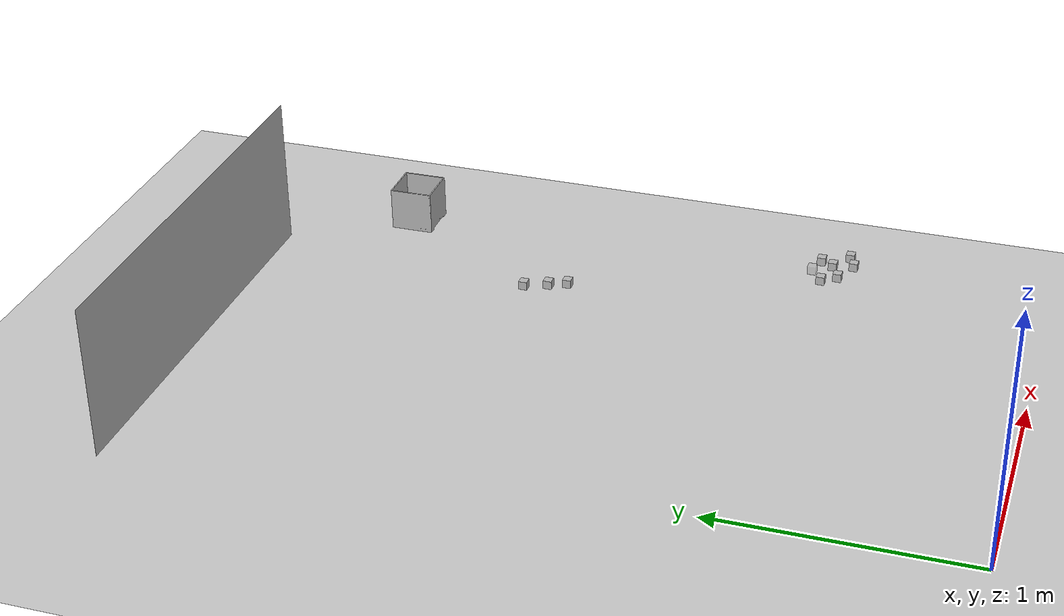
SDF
<sdf version="1.7">
 <world name="default">
  <model name="ground_plane">
   <static>1</static>
   <link name="link">
    <collision name="collision">
     <geometry><plane><normal>0 0 1</normal><size>100 100</size></plane></geometry>
     <surface><friction><ode><mu>100</mu><mu2>50</mu2></ode></friction></surface>
    </collision>
    <visual name="visual">
     <cast_shadows>0</cast_shadows>
     <geometry><plane><normal>0 0 1</normal><size>100 100</size></plane></geometry>
     <material>
      <script><uri>file://media/materials/scripts/gazebo.material</uri><name>Gazebo/Grey</name></script>
     </material>
    </visual>
   </link>
  </model>
  <model name="menagers_commerciale_gobelet_glace">
   <static>0</static>
   <link name="link">
    <inertial>
     <mass>0.00893</mass>
     <inertia>
      <ixx>4.47e-06</ixx>
      <iyy>4.47e-06</iyy>
      <izz>4.47e-06</izz>
      <ixy>0</ixy>
      <ixz>0</ixz>
      <iyz>0</iyz>
     </inertia>
    </inertial>
    <visual name="cube_visual">
     <geometry><box><size>0.03 0.03 0.03</size></box></geometry>
     <material>
      <script>
       <uri>model://menagers_commerciale_gobelet_glace/materials/scripts/</uri>
       <uri>model://menagers_commerciale_gobelet_glace/materials/textures/</uri>
       <name>menagers_commerciale_gobelet_glace/FaceMaterial</name>
      </script>
     </material>
    </visual>
    <collision name="collision"><geometry><box><size>0.03 0.03 0.03</size></box></geometry></collision>
   </link>
   <pose>0.310081 1.71409 0.624997 7.7e-05 0.000113 -0.005496</pose>
  </model>
  <model name="dangereux_residentielle_dechets_electronique">
   <static>0</static>
   <link name="link">
    <inertial>
     <mass>0.00893</mass>
     <inertia>
      <ixx>4.47e-06</ixx>
      <iyy>4.47e-06</iyy>
      <izz>4.47e-06</izz>
      <ixy>0</ixy>
      <ixz>0</ixz>
      <iyz>0</iyz>
     </inertia>
    </inertial>
    <visual name="cube_visual">
     <geometry><box><size>0.03 0.03 0.03</size></box></geometry>
     <material>
      <script>
       <uri>model://dangereux_residentielle_dechets_electronique/materials/scripts/</uri>
       <uri>model://dangereux_residentielle_dechets_electronique/materials/textures/</uri>
       <name>dangereux_residentielle_dechets_electronique/FaceMaterial</name>
      </script>
     </material>
    </visual>
    <collision name="collision"><geometry><box><size>0.03 0.03 0.03</size></box></geometry></collision>
   </link>
   <pose>0.339329 1.63457 0.625 0 0 -0.00903</pose>
  </model>
  <model name="dangereux_residentielle_insecticide_aerosol">
   <static>0</static>
   <link name="link">
    <inertial>
     <mass>0.00893</mass>
     <inertia>
      <ixx>4.47e-06</ixx>
      <iyy>4.47e-06</iyy>
      <izz>4.47e-06</izz>
      <ixy>0</ixy>
      <ixz>0</ixz>
      <iyz>0</iyz>
     </inertia>
    </inertial>
    <visual name="cube_visual">
     <geometry><box><size>0.03 0.03 0.03</size></box></geometry>
     <material>
      <script>
       <uri>model://dangereux_residentielle_insecticide_aerosol/materials/scripts/</uri>
       <uri>model://dangereux_residentielle_insecticide_aerosol/materials/textures/</uri>
       <name>dangereux_residentielle_insecticide_aerosol/FaceMaterial</name>
      </script>
     </material>
    </visual>
    <collision name="collision"><geometry><box><size>0.03 0.03 0.03</size></box></geometry></collision>
   </link>
   <pose>0.365225 1.5726 0.624997 3.5e-05 -0 -0.0068</pose>
  </model>
  <model name="dangereux_commerciale_condensateur_pcb">
   <static>0</static>
   <link name="link">
    <inertial>
     <mass>0.00893</mass>
     <inertia>
      <ixx>4.47e-06</ixx>
      <iyy>4.47e-06</iyy>
      <izz>4.47e-06</izz>
      <ixy>0</ixy>
      <ixz>0</ixz>
      <iyz>0</iyz>
     </inertia>
    </inertial>
    <visual name="cube_visual">
     <geometry><box><size>0.03 0.03 0.03</size></box></geometry>
     <material>
      <script>
       <uri>model://dangereux_commerciale_condensateur_pcb/materials/scripts/</uri>
       <uri>model://dangereux_commerciale_condensateur_pcb/materials/textures/</uri>
       <name>dangereux_commerciale_condensateur_pcb/FaceMaterial</name>
      </script>
     </material>
    </visual>
    <collision name="collision"><geometry><box><size>0.03 0.03 0.03</size></box></geometry></collision>
   </link>
   <pose>0.777484 0.760806 0.624991 2e-06 6.7e-05 -0.001045</pose>
  </model>
  <model name="dangereux_commerciale_disque_dur_defaillant">
   <static>0</static>
   <link name="link">
    <inertial>
     <mass>0.00893</mass>
     <inertia>
      <ixx>4.47e-06</ixx>
      <iyy>4.47e-06</iyy>
      <izz>4.47e-06</izz>
      <ixy>0</ixy>
      <ixz>0</ixz>
      <iyz>0</iyz>
     </inertia>
    </inertial>
    <visual name="cube_visual">
     <geometry><box><size>0.03 0.03 0.03</size></box></geometry>
     <material>
      <script>
       <uri>model://dangereux_commerciale_disque_dur_defaillant/materials/scripts/</uri>
       <uri>model://dangereux_commerciale_disque_dur_defaillant/materials/textures/</uri>
       <name>dangereux_commerciale_disque_dur_defaillant/FaceMaterial</name>
      </script>
     </material>
    </visual>
    <collision name="collision"><geometry><box><size>0.03 0.03 0.03</size></box></geometry></collision>
   </link>
   <pose>0.680274 0.68645 0.624991 2e-06 6.7e-05 -0.001045</pose>
  </model>
  <model name="dangereux_commerciale_ecran_lcd_casse">
   <static>0</static>
   <link name="link">
    <inertial>
     <mass>0.00893</mass>
     <inertia>
      <ixx>4.47e-06</ixx>
      <iyy>4.47e-06</iyy>
      <izz>4.47e-06</izz>
      <ixy>0</ixy>
      <ixz>0</ixz>
      <iyz>0</iyz>
     </inertia>
    </inertial>
    <visual name="cube_visual">
     <geometry><box><size>0.03 0.03 0.03</size></box></geometry>
     <material>
      <script>
       <uri>model://dangereux_commerciale_ecran_lcd_casse/materials/scripts/</uri>
       <uri>model://dangereux_commerciale_ecran_lcd_casse/materials/textures/</uri>
       <name>dangereux_commerciale_ecran_lcd_casse/FaceMaterial</name>
      </script>
     </material>
    </visual>
    <collision name="collision"><geometry><box><size>0.03 0.03 0.03</size></box></geometry></collision>
   </link>
   <pose>0.752677 0.716546 0.624993 -9.2e-05 -9e-05 -0.003399</pose>
  </model>
  <model name="dangereux_industrielle_dechet_radioactif_faible">
   <static>0</static>
   <link name="link">
    <inertial>
     <mass>0.00893</mass>
     <inertia>
      <ixx>4.47e-06</ixx>
      <iyy>4.47e-06</iyy>
      <izz>4.47e-06</izz>
      <ixy>0</ixy>
      <ixz>0</ixz>
      <iyz>0</iyz>
     </inertia>
    </inertial>
    <visual name="cube_visual">
     <geometry><box><size>0.03 0.03 0.03</size></box></geometry>
     <material>
      <script>
       <uri>model://dangereux_industrielle_dechet_radioactif_faible/materials/scripts/</uri>
       <uri>model://dangereux_industrielle_dechet_radioactif_faible/materials/textures/</uri>
       <name>dangereux_industrielle_dechet_radioactif_faible/FaceMaterial</name>
      </script>
     </material>
    </visual>
    <collision name="collision"><geometry><box><size>0.03 0.03 0.03</size></box></geometry></collision>
   </link>
   <pose>0.828776 0.667472 0.625 0 0 -0.010994</pose>
  </model>
  <model name="dangereux_industrielle_formaldehyde_industriel">
   <static>0</static>
   <link name="link">
    <inertial>
     <mass>0.00893</mass>
     <inertia>
      <ixx>4.47e-06</ixx>
      <iyy>4.47e-06</iyy>
      <izz>4.47e-06</izz>
      <ixy>0</ixy>
      <ixz>0</ixz>
      <iyz>0</iyz>
     </inertia>
    </inertial>
    <visual name="cube_visual">
     <geometry><box><size>0.03 0.03 0.03</size></box></geometry>
     <material>
      <script>
       <uri>model://dangereux_industrielle_formaldehyde_industriel/materials/scripts/</uri>
       <uri>model://dangereux_industrielle_formaldehyde_industriel/materials/textures/</uri>
       <name>dangereux_industrielle_formaldehyde_industriel/FaceMaterial</name>
      </script>
     </material>
    </visual>
    <collision name="collision"><geometry><box><size>0.03 0.03 0.03</size></box></geometry></collision>
   </link>
   <pose>0.770077 0.645647 0.625 0 -0 -0.010994</pose>
  </model>
  <model name="recyclables_commerciale_plastique_transparent">
   <static>0</static>
   <link name="link">
    <inertial>
     <mass>0.00893</mass>
     <inertia>
      <ixx>4.47e-06</ixx>
      <iyy>4.47e-06</iyy>
      <izz>4.47e-06</izz>
      <ixy>0</ixy>
      <ixz>0</ixz>
      <iyz>0</iyz>
     </inertia>
    </inertial>
    <visual name="cube_visual">
     <geometry><box><size>0.03 0.03 0.03</size></box></geometry>
     <material>
      <script>
       <uri>model://recyclables_commerciale_plastique_transparent/materials/scripts/</uri>
       <uri>model://recyclables_commerciale_plastique_transparent/materials/textures/</uri>
       <name>recyclables_commerciale_plastique_transparent/FaceMaterial</name>
      </script>
     </material>
    </visual>
    <collision name="collision"><geometry><box><size>0.03 0.03 0.03</size></box></geometry></collision>
   </link>
   <pose>0.705462 0.78085 0.624992 0.000128 6e-06 -0.008589</pose>
  </model>
  <model name="recyclables_industrielle_plastique_PE_film">
   <static>0</static>
   <link name="link">
    <inertial>
     <mass>0.00893</mass>
     <inertia>
      <ixx>4.47e-06</ixx>
      <iyy>4.47e-06</iyy>
      <izz>4.47e-06</izz>
      <ixy>0</ixy>
      <ixz>0</ixz>
      <iyz>0</iyz>
     </inertia>
    </inertial>
    <visual name="cube_visual">
     <geometry><box><size>0.03 0.03 0.03</size></box></geometry>
     <material>
      <script>
       <uri>model://recyclables_industrielle_plastique_PE_film/materials/scripts/</uri>
       <uri>model://recyclables_industrielle_plastique_PE_film/materials/textures/</uri>
       <name>recyclables_industrielle_plastique_PE_film/FaceMaterial</name>
      </script>
     </material>
    </visual>
    <collision name="collision"><geometry><box><size>0.03 0.03 0.03</size></box></geometry></collision>
   </link>
   <pose>0.643956 0.738516 0.624997 0.000123 -1e-06 -0.010954</pose>
  </model>
  <model name="corbeille_4">
   <static>1</static>
   <pose>0.654362 2.23105 0.613764 0 -0 0</pose>
   <link name="link">
    <collision name="collision">
     <pose>0 0 0.075 0 -0 0</pose>
     <geometry><box><size>0.15 0.15 0.15</size></box></geometry>
    </collision>
    <visual name="visual">
     <pose>0 0 0.01 1.56319 -0 0</pose>
     <geometry>
      <mesh><scale>0.001 0.001 0.001</scale><uri>model://corbeille/meshes/CORBEILLE.stl</uri></mesh>
     </geometry>
    </visual>
   </link>
  </model>
  <model name="logotrc_3">
   <static>1</static>
   <link name="link">
    <visual name="cube_visual">
     <geometry><box><size>1.7021 0 0.60443</size></box></geometry>
     <material>
      <script>
       <uri>model://logotrc/materials/scripts/</uri>
       <uri>model://logotrc/materials/textures/</uri>
       <name>logotrc/FaceMaterial</name>
      </script>
     </material>
    </visual>
   </link>
   <pose>0.565695 3.12622 0.307081 0 -0 0</pose>
  </model>
 </world>
</sdf>
